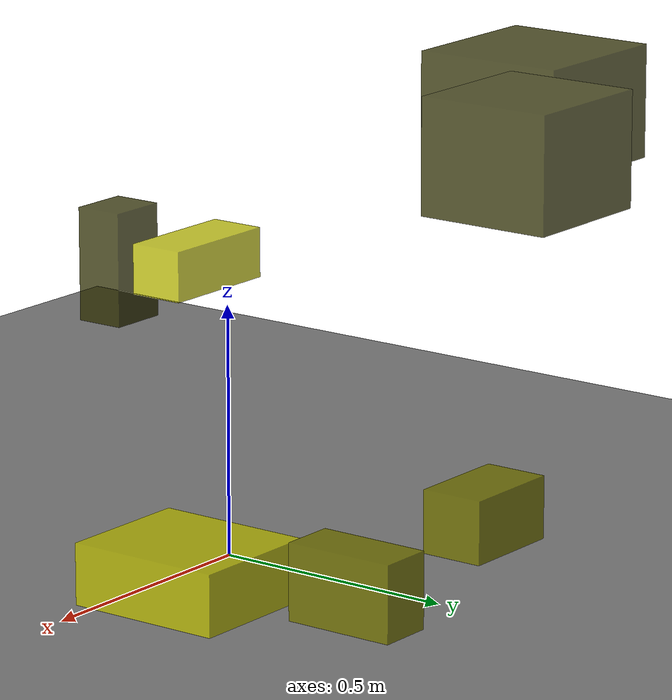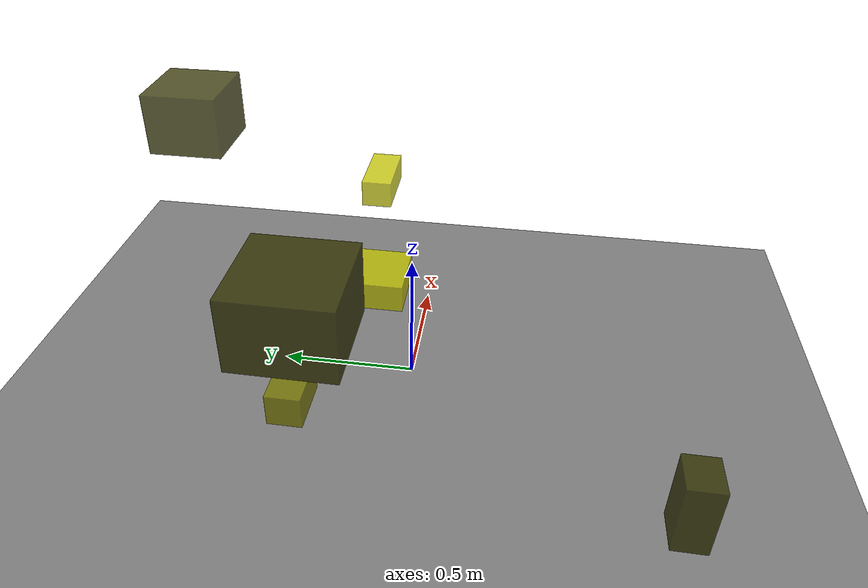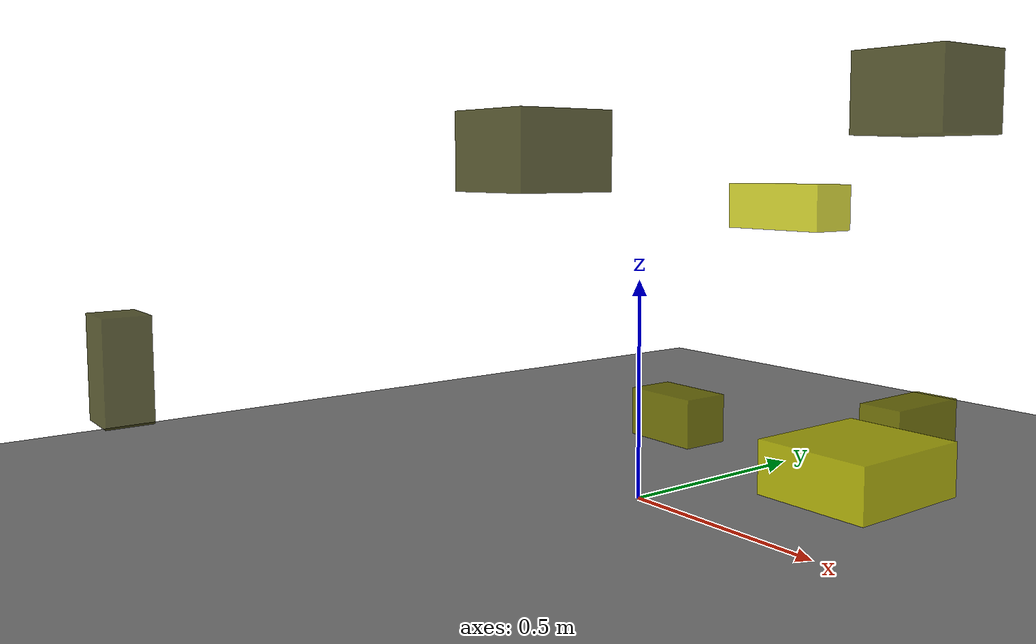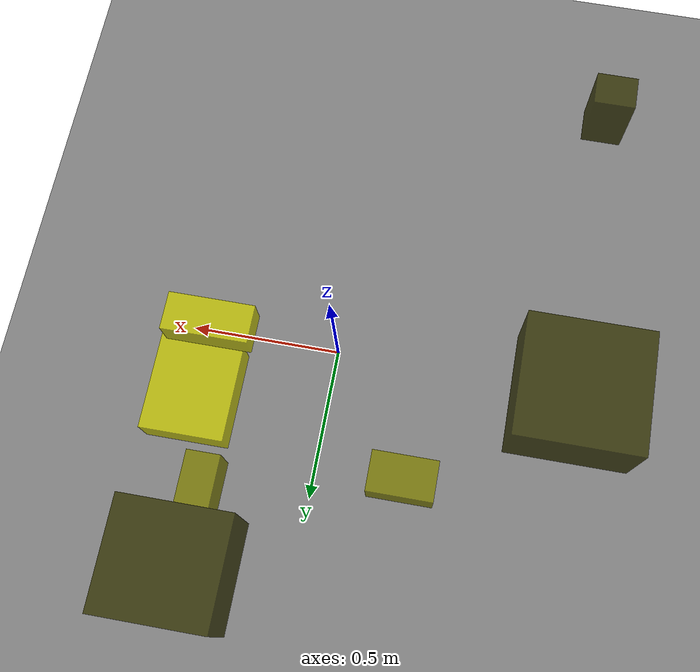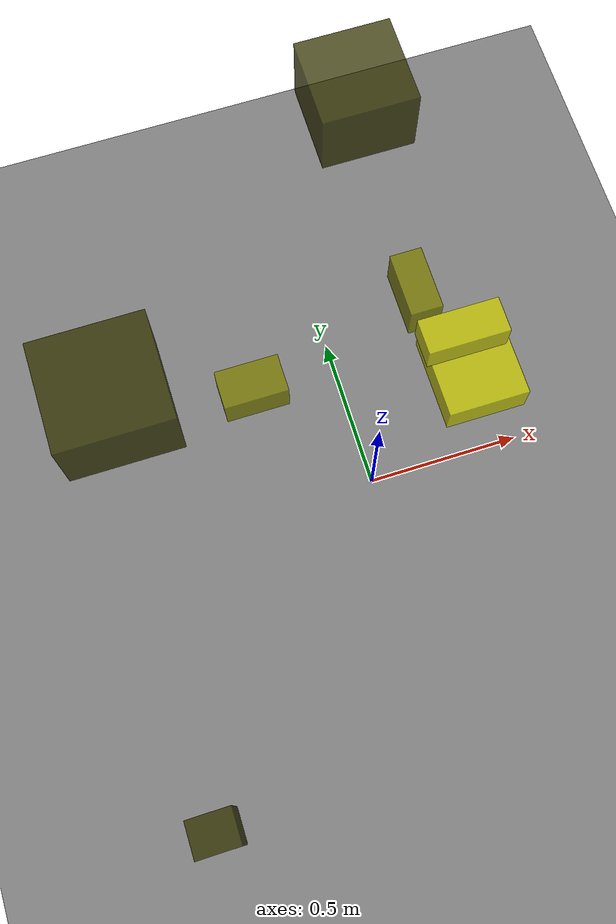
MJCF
<?xml version="1.0"?>
<mujoco model="obstacle_scene">
  <compiler angle="radian" coordinate="local"/>
  <option timestep="0.001" gravity="0 0 -9.81"/>

  <asset>
    <material name="obstacle_mat" rgba="0.8 0.8 0.0 0.8"/>
    <material name="ground_mat" rgba="0.5 0.5 0.5 1"/>
  </asset>

  <worldbody>
    <!-- Ground plane -->
    <geom name="ground" type="plane" size="3 3 0.1" material="ground_mat"/>

    <!-- Obstacles -->
    <body name="obstacle_0" pos="-0.703459 0.218751 0.798737">
      <geom name="obs_0" type="box" size="0.162065 0.158087 0.115396" rgba="0.2 0.2 0.0 0.8"/>
    </body>
    <body name="obstacle_1" pos="-0.288217 0.398588 0.085736">
      <geom name="obs_1" type="box" size="0.108053 0.065936 0.063925" rgba="0.5 0.5 0.0 0.8"/>
    </body>
    <body name="obstacle_2" pos="0.419811 0.239307 0.122525">
      <geom name="obs_2" type="box" size="0.135292 0.156495 0.059514" rgba="0.8 0.8 0.0 0.8"/>
    </body>
    <body name="obstacle_3" pos="0.176014 0.812236 0.942599">
      <geom name="obs_3" type="box" size="0.135176 0.130145 0.107262" rgba="0.2 0.2 0.0 0.8"/>
    </body>
    <body name="obstacle_4" pos="0.328046 0.552763 0.133124">
      <geom name="obs_4" type="box" size="0.054550 0.111557 0.074365" rgba="0.5 0.5 0.0 0.8"/>
    </body>
    <body name="obstacle_5" pos="0.288874 0.159226 0.671085">
      <geom name="obs_5" type="box" size="0.119408 0.052783 0.047183" rgba="0.8 0.8 0.0 0.8"/>
    </body>
    <body name="obstacle_6" pos="-0.767917 -0.913105 0.292107">
      <geom name="obs_6" type="box" size="0.066343 0.054457 0.125663" rgba="0.2 0.2 0.0 0.8"/>
    </body>
  </worldbody>
</mujoco>
